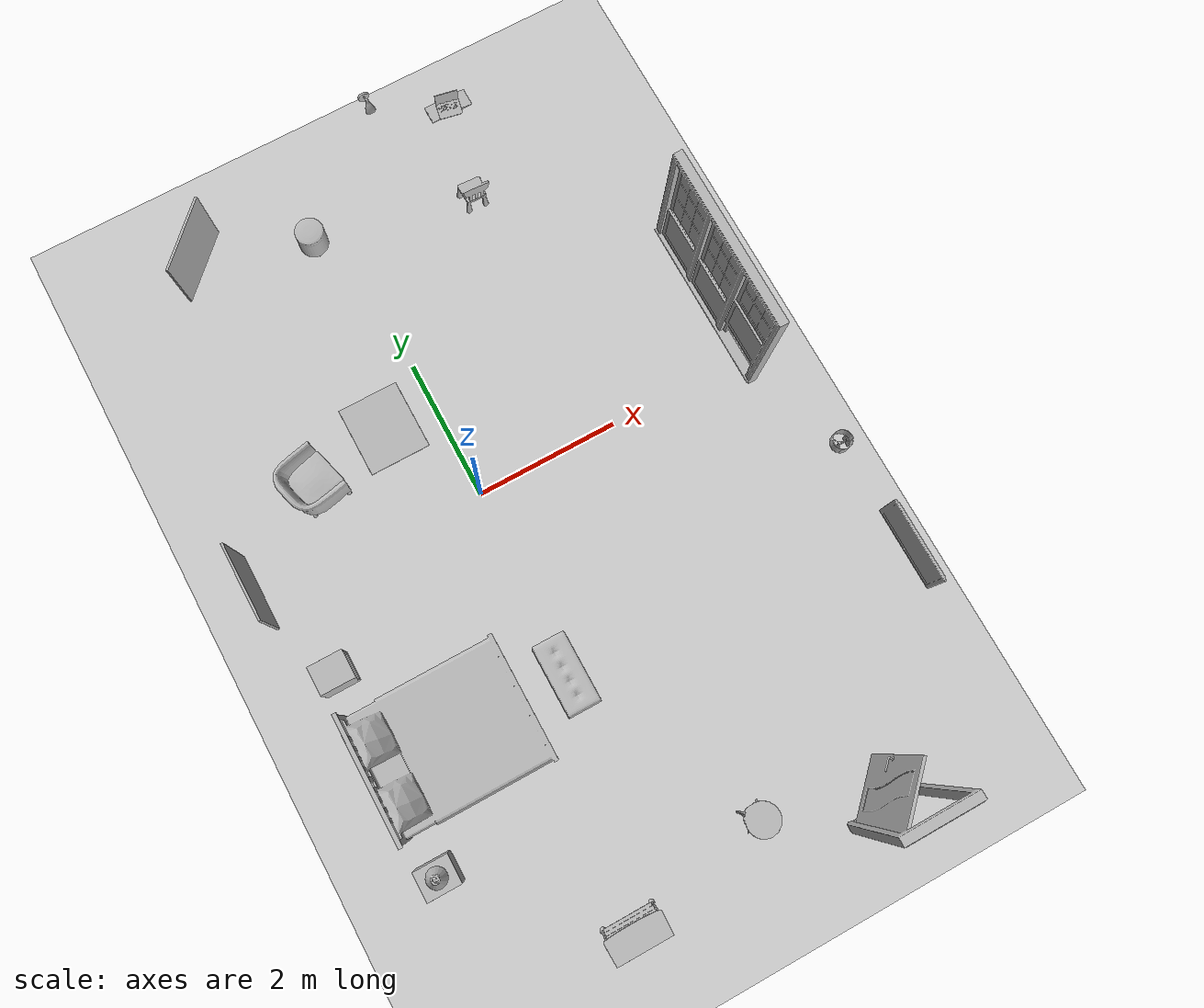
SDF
<sdf version="1.4">
 <world name="default">
  <light name="sun" type="directional">
   <pose>0 0 10 0 -0 0</pose>
   <diffuse>0.8 0.8 0.8 1</diffuse>
   <specular>0.2 0.2 0.2 1</specular>
   <attenuation>
    <range>1000</range>
    <constant>0.9</constant>
    <linear>0.01</linear>
    <quadratic>0.001</quadratic>
   </attenuation>
   <direction>-0.5 0.1 -0.9</direction>
  </light>
  <model name="ground_plane">
   <static>1</static>
   <link name="link">
    <collision name="collision">
     <geometry><plane><normal>0 0 1</normal><size>100 100</size></plane></geometry>
     <surface><friction><ode><mu>100</mu><mu2>50</mu2></ode></friction></surface>
    </collision>
    <visual name="visual">
     <cast_shadows>0</cast_shadows>
     <geometry><plane><normal>0 0 1</normal><size>100 100</size></plane></geometry>
     <material>
      <script><uri>file://media/materials/scripts/gazebo.material</uri><name>Gazebo/Grey</name></script>
     </material>
    </visual>
    <velocity_decay><linear>0</linear><angular>0</angular></velocity_decay>
   </link>
  </model>
  <physics type="ode">
   <max_step_size>0.001</max_step_size>
   <real_time_factor>1</real_time_factor>
   <real_time_update_rate>1000</real_time_update_rate>
   <gravity>0 0 -9.8</gravity>
  </physics>
  <scene><ambient>0.4 0.4 0.4 1</ambient><background>0.7 0.7 0.7 1</background><shadows>1</shadows></scene>
  <spherical_coordinates>
   <surface_model>EARTH_WGS84</surface_model>
   <latitude_deg>0</latitude_deg>
   <longitude_deg>0</longitude_deg>
   <elevation>0</elevation>
   <heading_deg>0</heading_deg>
  </spherical_coordinates>
  <model name="s__416_0">
   <pose>-1.80874 -2.63179 0.01 0 -0 0</pose>
   <static>1</static>
   <link name="link">
    <collision name="collision"><geometry><box><size>2.11 1.74 2</size></box></geometry></collision>
    <visual name="visual"><geometry><mesh><uri>model://s__416/s__416.dae</uri></mesh></geometry></visual>
    <velocity_decay><linear>0</linear><angular>0</angular></velocity_decay>
   </link>
  </model>
  <model name="s__514_0">
   <pose>-1.9155 1.10564 0.01 0 -0 0.261799</pose>
   <static>1</static>
   <link name="link">
    <collision name="collision"><geometry><box><size>0.72 0.8 2</size></box></geometry></collision>
    <visual name="visual"><geometry><mesh><uri>model://s__514/s__514.dae</uri></mesh></geometry></visual>
    <velocity_decay><linear>0</linear><angular>0</angular></velocity_decay>
   </link>
  </model>
  <model name="647_0">
   <pose>-0.380738 4.22666 0.01 0 -0 0</pose>
   <static>1</static>
   <link name="link">
    <collision name="collision"><geometry><box><size>0.399976 0.399792 2</size></box></geometry></collision>
    <visual name="visual"><geometry><mesh><uri>model://647/647.dae</uri></mesh></geometry></visual>
    <velocity_decay><linear>0</linear><angular>0</angular></velocity_decay>
   </link>
  </model>
  <model name="781_0">
   <pose>-1.80142 4.15304 1.01307 0 0 -0.794528</pose>
   <static>1</static>
   <link name="link">
    <collision name="collision"><geometry><box><size>0.03 1 2</size></box></geometry></collision>
    <visual name="visual"><geometry><mesh><uri>model://781/781.dae</uri></mesh></geometry></visual>
    <velocity_decay><linear>0</linear><angular>0</angular></velocity_decay>
   </link>
  </model>
  <model name="153_0">
   <pose>-0.733071 1.41747 0.01 0 -0 0</pose>
   <static>1</static>
   <link name="link">
    <collision name="collision"><geometry><box><size>0.86 1 0</size></box></geometry></collision>
    <visual name="visual"><geometry><mesh><uri>model://153/153.dae</uri></mesh></geometry></visual>
    <velocity_decay><linear>0</linear><angular>0</angular></velocity_decay>
   </link>
  </model>
  <model name="755_0">
   <pose>3.91225 0.855069 0.111705 0 -0 3.14159</pose>
   <static>1</static>
   <link name="link">
    <collision name="collision"><geometry><box><size>0.16 2.50006 2</size></box></geometry></collision>
    <visual name="visual"><geometry><mesh><uri>model://755/755.dae</uri></mesh></geometry></visual>
    <velocity_decay><linear>0</linear><angular>0</angular></velocity_decay>
   </link>
  </model>
  <model name="769_0">
   <pose>2.57698 -5.98553 0 0 0 -1.5708</pose>
   <static>1</static>
   <link name="link">
    <collision name="collision"><geometry><box><size>0.739999 1.06003 2</size></box></geometry></collision>
    <visual name="visual"><geometry><mesh><uri>model://769/769.dae</uri></mesh></geometry></visual>
    <velocity_decay><linear>0</linear><angular>0</angular></velocity_decay>
   </link>
  </model>
  <model name="216_0">
   <pose>3.94587 -3.29178 1.71 0 0 -3.14159</pose>
   <static>1</static>
   <link name="link">
    <collision name="collision"><geometry><box><size>0.05 1.05992 2</size></box></geometry></collision>
    <visual name="visual"><geometry><mesh><uri>model://216/216.dae</uri></mesh></geometry></visual>
    <velocity_decay><linear>0</linear><angular>0</angular></velocity_decay>
   </link>
  </model>
  <model name="553_0">
   <pose>-0.164738 -2.63179 0.01 0 -0 0</pose>
   <static>1</static>
   <link name="link">
    <collision name="collision"><geometry><box><size>0.459612 1 2</size></box></geometry></collision>
    <visual name="visual"><geometry><mesh><uri>model://553/553.dae</uri></mesh></geometry></visual>
    <velocity_decay><linear>0</linear><angular>0</angular></velocity_decay>
   </link>
  </model>
  <model name="s__997_0">
   <pose>-2.69674 -4.02379 0.01 0 -0 0</pose>
   <static>1</static>
   <link name="link">
    <collision name="collision"><geometry><box><size>0.48 0.4 2</size></box></geometry></collision>
    <visual name="visual"><geometry><mesh><uri>model://s__997/s__997.dae</uri></mesh></geometry></visual>
    <velocity_decay><linear>0</linear><angular>0</angular></velocity_decay>
   </link>
  </model>
  <model name="s__997_1">
   <pose>-2.73274 -1.22779 0.01 0 -0 0</pose>
   <static>1</static>
   <link name="link">
    <collision name="collision"><geometry><box><size>0.48 0.4 2</size></box></geometry></collision>
    <visual name="visual"><geometry><mesh><uri>model://s__997/s__997.dae</uri></mesh></geometry></visual>
    <velocity_decay><linear>0</linear><angular>0</angular></velocity_decay>
   </link>
  </model>
  <model name="s__443_0">
   <pose>1.05786 -5.27747 0.01 0 -0 1.55334</pose>
   <static>1</static>
   <link name="link">
    <collision name="collision"><geometry><box><size>0.45 0.45 2</size></box></geometry></collision>
    <visual name="visual"><geometry><mesh><uri>model://s__443/s__443.dae</uri></mesh></geometry></visual>
    <velocity_decay><linear>0</linear><angular>0</angular></velocity_decay>
   </link>
  </model>
  <model name="s__876_0">
   <pose>2.09125 4.86389 0.47 0 0 -1.5708</pose>
   <static>1</static>
   <link name="link">
    <collision name="collision"><geometry><box><size>0.25 0.6 2</size></box></geometry></collision>
    <visual name="visual"><geometry><mesh><uri>model://s__876/s__876.dae</uri></mesh></geometry></visual>
    <velocity_decay><linear>0</linear><angular>0</angular></velocity_decay>
   </link>
  </model>
  <model name="s__393_0">
   <pose>-0.908736 -5.68463 0.01 0 -0 1.5708</pose>
   <static>1</static>
   <link name="link">
    <collision name="collision"><geometry><box><size>0.34 0.76994 2</size></box></geometry></collision>
    <visual name="visual"><geometry><mesh><uri>model://s__393/s__393.dae</uri></mesh></geometry></visual>
    <velocity_decay><linear>0</linear><angular>0</angular></velocity_decay>
   </link>
  </model>
  <model name="120_0">
   <pose>2.08052 4.80464 0.67036 0 0 -1.76278</pose>
   <static>1</static>
   <link name="link">
    <collision name="collision"><geometry><box><size>0.225973 0.32 2</size></box></geometry></collision>
    <visual name="visual"><geometry><mesh><uri>model://120/120.dae</uri></mesh></geometry></visual>
    <velocity_decay><linear>0</linear><angular>0</angular></velocity_decay>
   </link>
  </model>
  <model name="s__1017_0">
   <pose>1.87451 3.77808 0.01 0 -0 1.51844</pose>
   <static>1</static>
   <link name="link">
    <collision name="collision"><geometry><box><size>0.34 0.39 2</size></box></geometry></collision>
    <visual name="visual"><geometry><mesh><uri>model://s__1017/s__1017.dae</uri></mesh></geometry></visual>
    <velocity_decay><linear>0</linear><angular>0</angular></velocity_decay>
   </link>
  </model>
  <model name="s__1024_0">
   <pose>1.01126 4.86247 1.51 0 0 -1.5708</pose>
   <static>1</static>
   <link name="link">
    <collision name="collision"><geometry><box><size>0.27 0.15 2</size></box></geometry></collision>
    <visual name="visual"><geometry><mesh><uri>model://s__1024/s__1024.dae</uri></mesh></geometry></visual>
    <velocity_decay><linear>0</linear><angular>0</angular></velocity_decay>
   </link>
  </model>
  <model name="s__763_0">
   <pose>3.8477 -1.87358 1.81 0 -0 3.10669</pose>
   <static>1</static>
   <link name="link">
    <collision name="collision"><geometry><box><size>0.249988 0.239976 2</size></box></geometry></collision>
    <visual name="visual"><geometry><mesh><uri>model://s__763/s__763.dae</uri></mesh></geometry></visual>
    <velocity_decay><linear>0</linear><angular>0</angular></velocity_decay>
   </link>
  </model>
  <model name="s__580_0">
   <pose>-2.68474 -4.01178 0.560001 0 -0 0</pose>
   <static>1</static>
   <link name="link">
    <collision name="collision"><geometry><box><size>0.28 0.28 2</size></box></geometry></collision>
    <visual name="visual"><geometry><mesh><uri>model://s__580/s__580.dae</uri></mesh></geometry></visual>
    <velocity_decay><linear>0</linear><angular>0</angular></velocity_decay>
   </link>
  </model>
  <model name="781_1">
   <pose>-2.97849 -0.051784 1.14 0 -0 0</pose>
   <static>1</static>
   <link name="link">
    <collision name="collision"><geometry><box><size>0.03 1 2</size></box></geometry></collision>
    <visual name="visual"><geometry><mesh><uri>model://781/781.dae</uri></mesh></geometry></visual>
    <velocity_decay><linear>0</linear><angular>0</angular></velocity_decay>
   </link>
  </model>
 </world>
</sdf>
